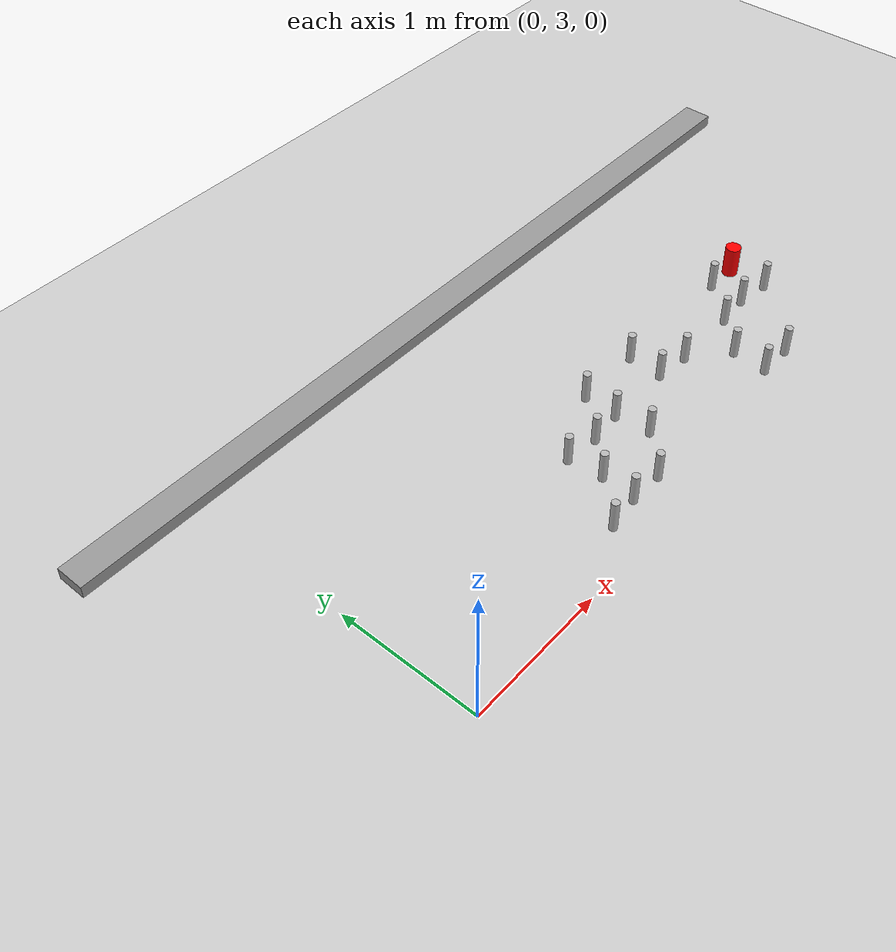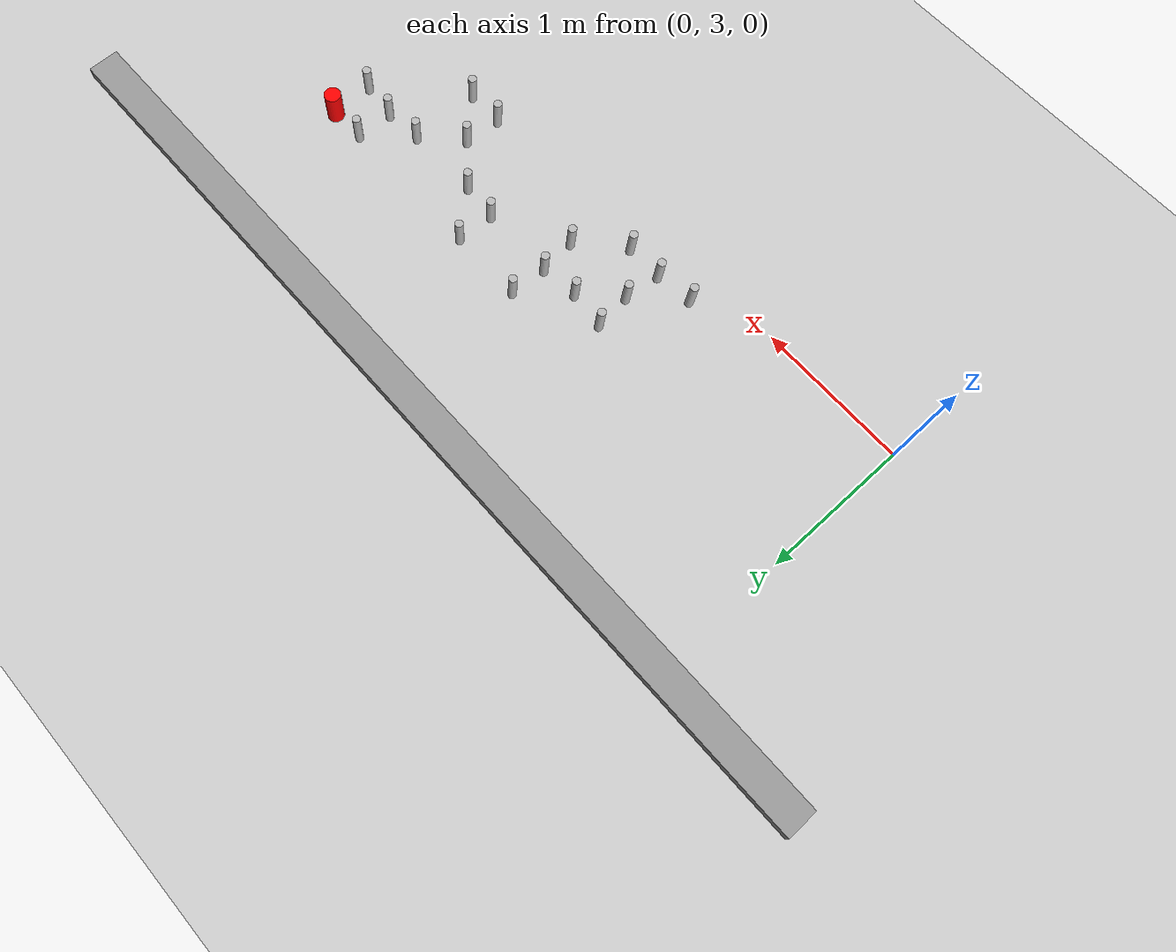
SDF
<sdf version="1.6">
 <world name="default">
  <model name="ground_plane">
   <static>1</static>
   <link name="link">
    <collision name="collision">
     <geometry><plane><normal>0 0 1</normal><size>100 100</size></plane></geometry>
     <surface><friction><ode><mu>100</mu><mu2>50</mu2></ode></friction></surface>
    </collision>
    <visual name="visual">
     <cast_shadows>0</cast_shadows>
     <geometry><plane><normal>0 0 1</normal><size>100 100</size></plane></geometry>
     <material>
      <script><uri>file://media/materials/scripts/gazebo.material</uri><name>Gazebo/Grey</name></script>
     </material>
    </visual>
   </link>
  </model>
  <model name="goal">
   <link name="link">
    <pose>0 0 0.115 0 -0 0</pose>
    <inertial>
     <mass>0.0005</mass>
     <inertia><ixx>0.00058</ixx><ixy>0</ixy><ixz>0</ixz><iyy>0.00058</iyy><iyz>0</iyz><izz>0.00019</izz></inertia>
    </inertial>
    <visual name="visual">
     <geometry><cylinder><radius>0.055</radius><length>0.23</length></cylinder></geometry>
     <material>
      <script>
       <uri>model://beer/materials/scripts</uri>
       <uri>model://beer/materials/textures</uri>
       <name>Beer/Diffuse</name>
      </script>
      <ambient>1 0 0 1</ambient>
      <diffuse>1 0 0 1</diffuse>
      <specular>0 0 0 1</specular>
      <emissive>0 0 0 1</emissive>
      <shader type="vertex"><normal_map>__default__</normal_map></shader>
     </material>
    </visual>
    <collision name="collision">
     <geometry><cylinder><radius>0.055</radius><length>0.23</length></cylinder></geometry>
     <surface>
      <friction>
       <ode><mu>1</mu><mu2>1</mu2><fdir1>0 0 0</fdir1><slip1>0</slip1><slip2>0</slip2></ode>
       <torsional>
        <coefficient>1</coefficient>
        <patch_radius>0</patch_radius>
        <surface_radius>0</surface_radius>
        <use_patch_radius>1</use_patch_radius>
        <ode><slip>0</slip></ode>
       </torsional>
      </friction>
      <bounce><restitution_coefficient>0</restitution_coefficient><threshold>1e+06</threshold></bounce>
      <contact>
       <collide_without_contact>0</collide_without_contact>
       <collide_without_contact_bitmask>1</collide_without_contact_bitmask>
       <collide_bitmask>1</collide_bitmask>
       <ode>
        <soft_cfm>0</soft_cfm>
        <soft_erp>0.2</soft_erp>
        <kp>1e+13</kp>
        <kd>1</kd>
        <max_vel>0.01</max_vel>
        <min_depth>0</min_depth>
       </ode>
       <bullet>
        <split_impulse>1</split_impulse>
        <split_impulse_penetration_threshold>-0.01</split_impulse_penetration_threshold>
        <soft_cfm>0</soft_cfm>
        <soft_erp>0.2</soft_erp>
        <kp>1e+13</kp>
        <kd>1</kd>
       </bullet>
      </contact>
     </surface>
    </collision>
   </link>
   <static>0</static>
   <pose>4.0 4.0 -9e-06 -1e-06 -4e-06 0</pose>
  </model>
  <model name="wall2">
   <static>1</static>
   <link name="link">
    <pose>0 0 0.42 0 -0 0</pose>
    <collision name="collision"><geometry><box><size>6 0.2 0.084</size></box></geometry></collision>
    <visual name="visual">
     <cast_shadows>0</cast_shadows>
     <geometry><box><size>6 0.2 0.084</size></box></geometry>
     <material>
      <script>
       <uri>model://grey_wall/materials/scripts</uri>
       <uri>model://grey_wall/materials/textures</uri>
       <name>vrc/grey_wall</name>
      </script>
     </material>
    </visual>
   </link>
   <pose>2.0 5.0 0 0 -0 0</pose>
  </model>
  <model name="can3">
   <link name="link">
    <pose>0 0 0.115 0 -0 0</pose>
    <inertial>
     <mass>0.39</mass>
     <inertia><ixx>0.00058</ixx><ixy>0</ixy><ixz>0</ixz><iyy>0.00058</iyy><iyz>0</iyz><izz>0.00019</izz></inertia>
    </inertial>
    <collision name="collision">
     <geometry><cylinder><radius>0.0275</radius><length>0.23</length></cylinder></geometry>
    </collision>
    <visual name="visual">
     <geometry><cylinder><radius>0.0275</radius><length>0.23</length></cylinder></geometry>
     <material>
      <script>
       <uri>model://beer/materials/scripts</uri>
       <uri>model://beer/materials/textures</uri>
       <name>Beer/Diffuse</name>
      </script>
     </material>
    </visual>
   </link>
   <pose>3.26495329951 3.5 -2e-06 1e-06 0 -9.5e-05</pose>
  </model>
  <model name="can8">
   <link name="link">
    <pose>0 0 0.115 0 -0 0</pose>
    <inertial>
     <mass>0.39</mass>
     <inertia><ixx>0.00058</ixx><ixy>0</ixy><ixz>0</ixz><iyy>0.00058</iyy><iyz>0</iyz><izz>0.00019</izz></inertia>
    </inertial>
    <collision name="collision">
     <geometry><cylinder><radius>0.0275</radius><length>0.23</length></cylinder></geometry>
    </collision>
    <visual name="visual">
     <geometry><cylinder><radius>0.0275</radius><length>0.23</length></cylinder></geometry>
     <material>
      <script>
       <uri>model://beer/materials/scripts</uri>
       <uri>model://beer/materials/textures</uri>
       <name>Beer/Diffuse</name>
      </script>
     </material>
    </visual>
   </link>
   <pose>2.26545907401 4.0 -2e-06 1e-06 0 -9.5e-05</pose>
  </model>
  <model name="can13">
   <link name="link">
    <pose>0 0 0.115 0 -0 0</pose>
    <inertial>
     <mass>0.39</mass>
     <inertia><ixx>0.00058</ixx><ixy>0</ixy><ixz>0</ixz><iyy>0.00058</iyy><iyz>0</iyz><izz>0.00019</izz></inertia>
    </inertial>
    <collision name="collision">
     <geometry><cylinder><radius>0.0275</radius><length>0.23</length></cylinder></geometry>
    </collision>
    <visual name="visual">
     <geometry><cylinder><radius>0.0275</radius><length>0.23</length></cylinder></geometry>
     <material>
      <script>
       <uri>model://beer/materials/scripts</uri>
       <uri>model://beer/materials/textures</uri>
       <name>Beer/Diffuse</name>
      </script>
     </material>
    </visual>
   </link>
   <pose>3.75884397193 4.0 -2e-06 1e-06 0 -9.5e-05</pose>
  </model>
  <model name="can18">
   <link name="link">
    <pose>0 0 0.115 0 -0 0</pose>
    <inertial>
     <mass>0.39</mass>
     <inertia><ixx>0.00058</ixx><ixy>0</ixy><ixz>0</ixz><iyy>0.00058</iyy><iyz>0</iyz><izz>0.00019</izz></inertia>
    </inertial>
    <collision name="collision">
     <geometry><cylinder><radius>0.0275</radius><length>0.23</length></cylinder></geometry>
    </collision>
    <visual name="visual">
     <geometry><cylinder><radius>0.0275</radius><length>0.23</length></cylinder></geometry>
     <material>
      <script>
       <uri>model://beer/materials/scripts</uri>
       <uri>model://beer/materials/textures</uri>
       <name>Beer/Diffuse</name>
      </script>
     </material>
    </visual>
   </link>
   <pose>2.76154148792 4.0 -2e-06 1e-06 0 -9.5e-05</pose>
  </model>
  <model name="can27">
   <link name="link">
    <pose>0 0 0.115 0 -0 0</pose>
    <inertial>
     <mass>0.39</mass>
     <inertia><ixx>0.00058</ixx><ixy>0</ixy><ixz>0</ixz><iyy>0.00058</iyy><iyz>0</iyz><izz>0.00019</izz></inertia>
    </inertial>
    <collision name="collision">
     <geometry><cylinder><radius>0.0275</radius><length>0.23</length></cylinder></geometry>
    </collision>
    <visual name="visual">
     <geometry><cylinder><radius>0.0275</radius><length>0.23</length></cylinder></geometry>
     <material>
      <script>
       <uri>model://beer/materials/scripts</uri>
       <uri>model://beer/materials/textures</uri>
       <name>Beer/Diffuse</name>
      </script>
     </material>
    </visual>
   </link>
   <pose>2.27713867576 3.5 -2e-06 1e-06 0 -9.5e-05</pose>
  </model>
  <model name="can34">
   <link name="link">
    <pose>0 0 0.115 0 -0 0</pose>
    <inertial>
     <mass>0.39</mass>
     <inertia><ixx>0.00058</ixx><ixy>0</ixy><ixz>0</ixz><iyy>0.00058</iyy><iyz>0</iyz><izz>0.00019</izz></inertia>
    </inertial>
    <collision name="collision">
     <geometry><cylinder><radius>0.0275</radius><length>0.23</length></cylinder></geometry>
    </collision>
    <visual name="visual">
     <geometry><cylinder><radius>0.0275</radius><length>0.23</length></cylinder></geometry>
     <material>
      <script>
       <uri>model://beer/materials/scripts</uri>
       <uri>model://beer/materials/textures</uri>
       <name>Beer/Diffuse</name>
      </script>
     </material>
    </visual>
   </link>
   <pose>2.75 3.75 -2e-06 1e-06 0 -9.5e-05</pose>
  </model>
  <model name="can37">
   <link name="link">
    <pose>0 0 0.115 0 -0 0</pose>
    <inertial>
     <mass>0.39</mass>
     <inertia><ixx>0.00058</ixx><ixy>0</ixy><ixz>0</ixz><iyy>0.00058</iyy><iyz>0</iyz><izz>0.00019</izz></inertia>
    </inertial>
    <collision name="collision">
     <geometry><cylinder><radius>0.0275</radius><length>0.23</length></cylinder></geometry>
    </collision>
    <visual name="visual">
     <geometry><cylinder><radius>0.0275</radius><length>0.23</length></cylinder></geometry>
     <material>
      <script>
       <uri>model://beer/materials/scripts</uri>
       <uri>model://beer/materials/textures</uri>
       <name>Beer/Diffuse</name>
      </script>
     </material>
    </visual>
   </link>
   <pose>1.75 3.75 -2e-06 1e-06 0 -9.5e-05</pose>
  </model>
  <model name="can48">
   <link name="link">
    <pose>0 0 0.115 0 -0 0</pose>
    <inertial>
     <mass>0.39</mass>
     <inertia><ixx>0.00058</ixx><ixy>0</ixy><ixz>0</ixz><iyy>0.00058</iyy><iyz>0</iyz><izz>0.00019</izz></inertia>
    </inertial>
    <collision name="collision">
     <geometry><cylinder><radius>0.0275</radius><length>0.23</length></cylinder></geometry>
    </collision>
    <visual name="visual">
     <geometry><cylinder><radius>0.0275</radius><length>0.23</length></cylinder></geometry>
     <material>
      <script>
       <uri>model://beer/materials/scripts</uri>
       <uri>model://beer/materials/textures</uri>
       <name>Beer/Diffuse</name>
      </script>
     </material>
    </visual>
   </link>
   <pose>2.0 3.72316663458 -2e-06 1e-06 0 -9.5e-05</pose>
  </model>
  <model name="can55">
   <link name="link">
    <pose>0 0 0.115 0 -0 0</pose>
    <inertial>
     <mass>0.39</mass>
     <inertia><ixx>0.00058</ixx><ixy>0</ixy><ixz>0</ixz><iyy>0.00058</iyy><iyz>0</iyz><izz>0.00019</izz></inertia>
    </inertial>
    <collision name="collision">
     <geometry><cylinder><radius>0.0275</radius><length>0.23</length></cylinder></geometry>
    </collision>
    <visual name="visual">
     <geometry><cylinder><radius>0.0275</radius><length>0.23</length></cylinder></geometry>
     <material>
      <script>
       <uri>model://beer/materials/scripts</uri>
       <uri>model://beer/materials/textures</uri>
       <name>Beer/Diffuse</name>
      </script>
     </material>
    </visual>
   </link>
   <pose>4.0 3.71804000206 -2e-06 1e-06 0 -9.5e-05</pose>
  </model>
  <model name="can61">
   <link name="link">
    <pose>0 0 0.115 0 -0 0</pose>
    <inertial>
     <mass>0.39</mass>
     <inertia><ixx>0.00058</ixx><ixy>0</ixy><ixz>0</ixz><iyy>0.00058</iyy><iyz>0</iyz><izz>0.00019</izz></inertia>
    </inertial>
    <collision name="collision">
     <geometry><cylinder><radius>0.0275</radius><length>0.23</length></cylinder></geometry>
    </collision>
    <visual name="visual">
     <geometry><cylinder><radius>0.0275</radius><length>0.23</length></cylinder></geometry>
     <material>
      <script>
       <uri>model://beer/materials/scripts</uri>
       <uri>model://beer/materials/textures</uri>
       <name>Beer/Diffuse</name>
      </script>
     </material>
    </visual>
   </link>
   <pose>1.77456941149 3.5 -2e-06 1e-06 0 -9.5e-05</pose>
  </model>
  <model name="can62">
   <link name="link">
    <pose>0 0 0.115 0 -0 0</pose>
    <inertial>
     <mass>0.39</mass>
     <inertia><ixx>0.00058</ixx><ixy>0</ixy><ixz>0</ixz><iyy>0.00058</iyy><iyz>0</iyz><izz>0.00019</izz></inertia>
    </inertial>
    <collision name="collision">
     <geometry><cylinder><radius>0.0275</radius><length>0.23</length></cylinder></geometry>
    </collision>
    <visual name="visual">
     <geometry><cylinder><radius>0.0275</radius><length>0.23</length></cylinder></geometry>
     <material>
      <script>
       <uri>model://beer/materials/scripts</uri>
       <uri>model://beer/materials/textures</uri>
       <name>Beer/Diffuse</name>
      </script>
     </material>
    </visual>
   </link>
   <pose>3.5 3.24652299633 -2e-06 1e-06 0 -9.5e-05</pose>
  </model>
  <model name="can63">
   <link name="link">
    <pose>0 0 0.115 0 -0 0</pose>
    <inertial>
     <mass>0.39</mass>
     <inertia><ixx>0.00058</ixx><ixy>0</ixy><ixz>0</ixz><iyy>0.00058</iyy><iyz>0</iyz><izz>0.00019</izz></inertia>
    </inertial>
    <collision name="collision">
     <geometry><cylinder><radius>0.0275</radius><length>0.23</length></cylinder></geometry>
    </collision>
    <visual name="visual">
     <geometry><cylinder><radius>0.0275</radius><length>0.23</length></cylinder></geometry>
     <material>
      <script>
       <uri>model://beer/materials/scripts</uri>
       <uri>model://beer/materials/textures</uri>
       <name>Beer/Diffuse</name>
      </script>
     </material>
    </visual>
   </link>
   <pose>3.25 3.25 -2e-06 1e-06 0 -9.5e-05</pose>
  </model>
  <model name="can76">
   <link name="link">
    <pose>0 0 0.115 0 -0 0</pose>
    <inertial>
     <mass>0.39</mass>
     <inertia><ixx>0.00058</ixx><ixy>0</ixy><ixz>0</ixz><iyy>0.00058</iyy><iyz>0</iyz><izz>0.00019</izz></inertia>
    </inertial>
    <collision name="collision">
     <geometry><cylinder><radius>0.0275</radius><length>0.23</length></cylinder></geometry>
    </collision>
    <visual name="visual">
     <geometry><cylinder><radius>0.0275</radius><length>0.23</length></cylinder></geometry>
     <material>
      <script>
       <uri>model://beer/materials/scripts</uri>
       <uri>model://beer/materials/textures</uri>
       <name>Beer/Diffuse</name>
      </script>
     </material>
    </visual>
   </link>
   <pose>2.25 3.75 -2e-06 1e-06 0 -9.5e-05</pose>
  </model>
  <model name="can94">
   <link name="link">
    <pose>0 0 0.115 0 -0 0</pose>
    <inertial>
     <mass>0.39</mass>
     <inertia><ixx>0.00058</ixx><ixy>0</ixy><ixz>0</ixz><iyy>0.00058</iyy><iyz>0</iyz><izz>0.00019</izz></inertia>
    </inertial>
    <collision name="collision">
     <geometry><cylinder><radius>0.0275</radius><length>0.23</length></cylinder></geometry>
    </collision>
    <visual name="visual">
     <geometry><cylinder><radius>0.0275</radius><length>0.23</length></cylinder></geometry>
     <material>
      <script>
       <uri>model://beer/materials/scripts</uri>
       <uri>model://beer/materials/textures</uri>
       <name>Beer/Diffuse</name>
      </script>
     </material>
    </visual>
   </link>
   <pose>1.5 3.21855397919 -2e-06 1e-06 0 -9.5e-05</pose>
  </model>
  <model name="can102">
   <link name="link">
    <pose>0 0 0.115 0 -0 0</pose>
    <inertial>
     <mass>0.39</mass>
     <inertia><ixx>0.00058</ixx><ixy>0</ixy><ixz>0</ixz><iyy>0.00058</iyy><iyz>0</iyz><izz>0.00019</izz></inertia>
    </inertial>
    <collision name="collision">
     <geometry><cylinder><radius>0.0275</radius><length>0.23</length></cylinder></geometry>
    </collision>
    <visual name="visual">
     <geometry><cylinder><radius>0.0275</radius><length>0.23</length></cylinder></geometry>
     <material>
      <script>
       <uri>model://beer/materials/scripts</uri>
       <uri>model://beer/materials/textures</uri>
       <name>Beer/Diffuse</name>
      </script>
     </material>
    </visual>
   </link>
   <pose>3.0 3.7225603807 -2e-06 1e-06 0 -9.5e-05</pose>
  </model>
  <model name="can107">
   <link name="link">
    <pose>0 0 0.115 0 -0 0</pose>
    <inertial>
     <mass>0.39</mass>
     <inertia><ixx>0.00058</ixx><ixy>0</ixy><ixz>0</ixz><iyy>0.00058</iyy><iyz>0</iyz><izz>0.00019</izz></inertia>
    </inertial>
    <collision name="collision">
     <geometry><cylinder><radius>0.0275</radius><length>0.23</length></cylinder></geometry>
    </collision>
    <visual name="visual">
     <geometry><cylinder><radius>0.0275</radius><length>0.23</length></cylinder></geometry>
     <material>
      <script>
       <uri>model://beer/materials/scripts</uri>
       <uri>model://beer/materials/textures</uri>
       <name>Beer/Diffuse</name>
      </script>
     </material>
    </visual>
   </link>
   <pose>3.5 3.72817882791 -2e-06 1e-06 0 -9.5e-05</pose>
  </model>
  <model name="can108">
   <link name="link">
    <pose>0 0 0.115 0 -0 0</pose>
    <inertial>
     <mass>0.39</mass>
     <inertia><ixx>0.00058</ixx><ixy>0</ixy><ixz>0</ixz><iyy>0.00058</iyy><iyz>0</iyz><izz>0.00019</izz></inertia>
    </inertial>
    <collision name="collision">
     <geometry><cylinder><radius>0.0275</radius><length>0.23</length></cylinder></geometry>
    </collision>
    <visual name="visual">
     <geometry><cylinder><radius>0.0275</radius><length>0.23</length></cylinder></geometry>
     <material>
      <script>
       <uri>model://beer/materials/scripts</uri>
       <uri>model://beer/materials/textures</uri>
       <name>Beer/Diffuse</name>
      </script>
     </material>
    </visual>
   </link>
   <pose>3.75 3.75 -2e-06 1e-06 0 -9.5e-05</pose>
  </model>
  <model name="can120">
   <link name="link">
    <pose>0 0 0.115 0 -0 0</pose>
    <inertial>
     <mass>0.39</mass>
     <inertia><ixx>0.00058</ixx><ixy>0</ixy><ixz>0</ixz><iyy>0.00058</iyy><iyz>0</iyz><izz>0.00019</izz></inertia>
    </inertial>
    <collision name="collision">
     <geometry><cylinder><radius>0.0275</radius><length>0.23</length></cylinder></geometry>
    </collision>
    <visual name="visual">
     <geometry><cylinder><radius>0.0275</radius><length>0.23</length></cylinder></geometry>
     <material>
      <script>
       <uri>model://beer/materials/scripts</uri>
       <uri>model://beer/materials/textures</uri>
       <name>Beer/Diffuse</name>
      </script>
     </material>
    </visual>
   </link>
   <pose>1.75 3.25 -2e-06 1e-06 0 -9.5e-05</pose>
  </model>
  <model name="can124">
   <link name="link">
    <pose>0 0 0.115 0 -0 0</pose>
    <inertial>
     <mass>0.39</mass>
     <inertia><ixx>0.00058</ixx><ixy>0</ixy><ixz>0</ixz><iyy>0.00058</iyy><iyz>0</iyz><izz>0.00019</izz></inertia>
    </inertial>
    <collision name="collision">
     <geometry><cylinder><radius>0.0275</radius><length>0.23</length></cylinder></geometry>
    </collision>
    <visual name="visual">
     <geometry><cylinder><radius>0.0275</radius><length>0.23</length></cylinder></geometry>
     <material>
      <script>
       <uri>model://beer/materials/scripts</uri>
       <uri>model://beer/materials/textures</uri>
       <name>Beer/Diffuse</name>
      </script>
     </material>
    </visual>
   </link>
   <pose>2.0 3.24550622553 -2e-06 1e-06 0 -9.5e-05</pose>
  </model>
 </world>
</sdf>
